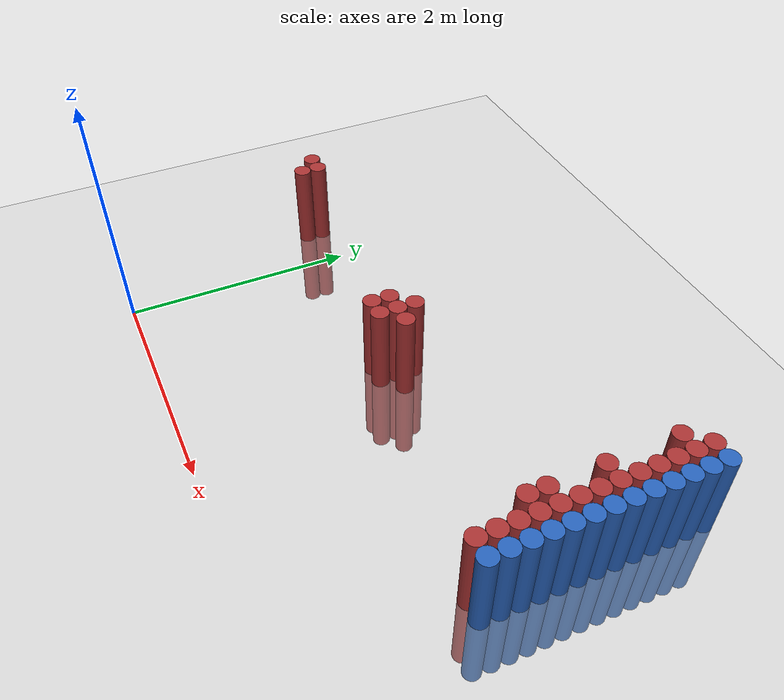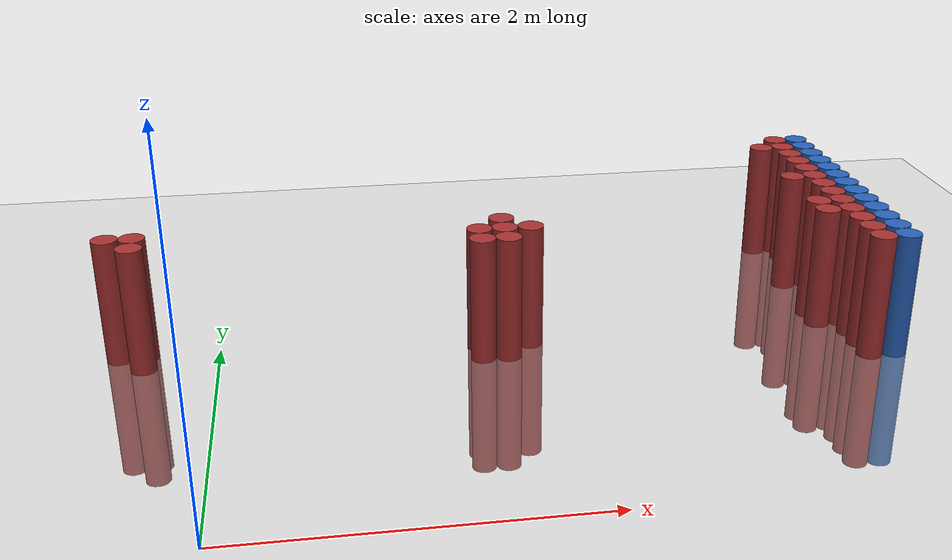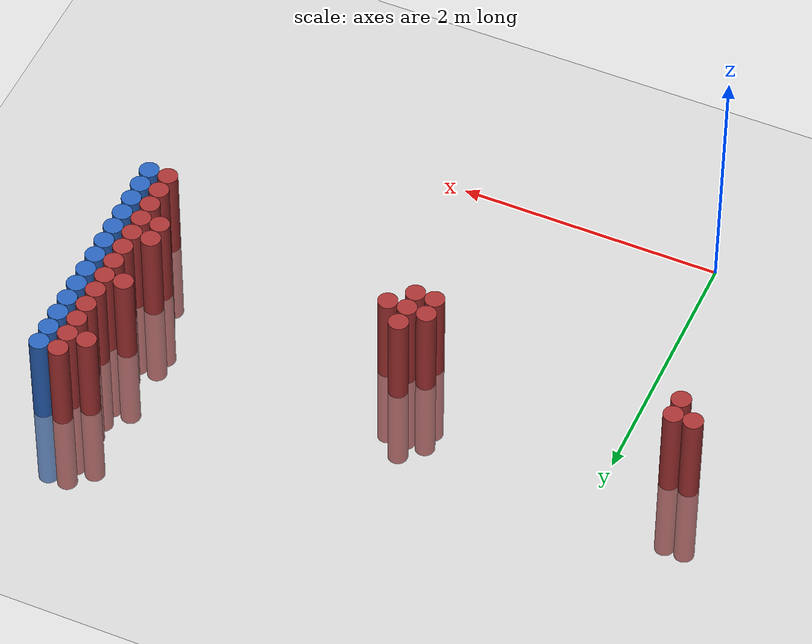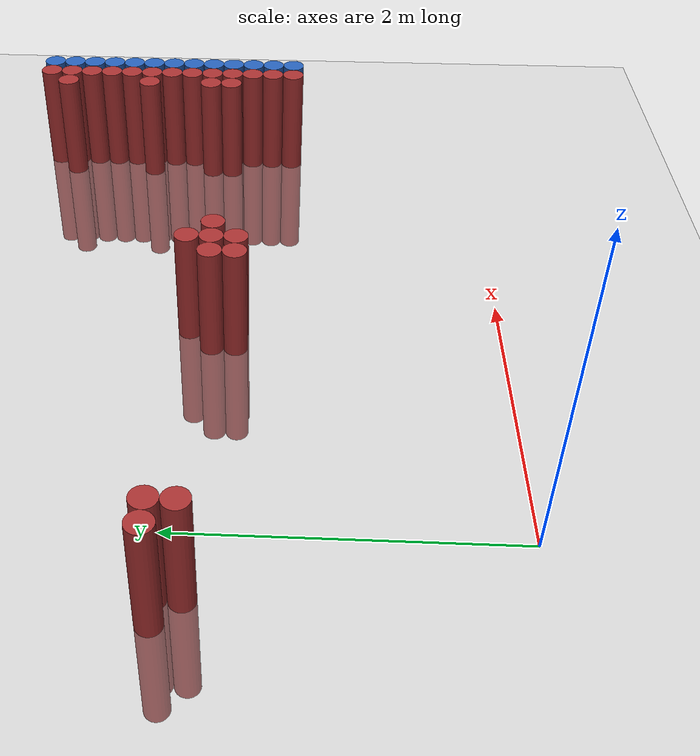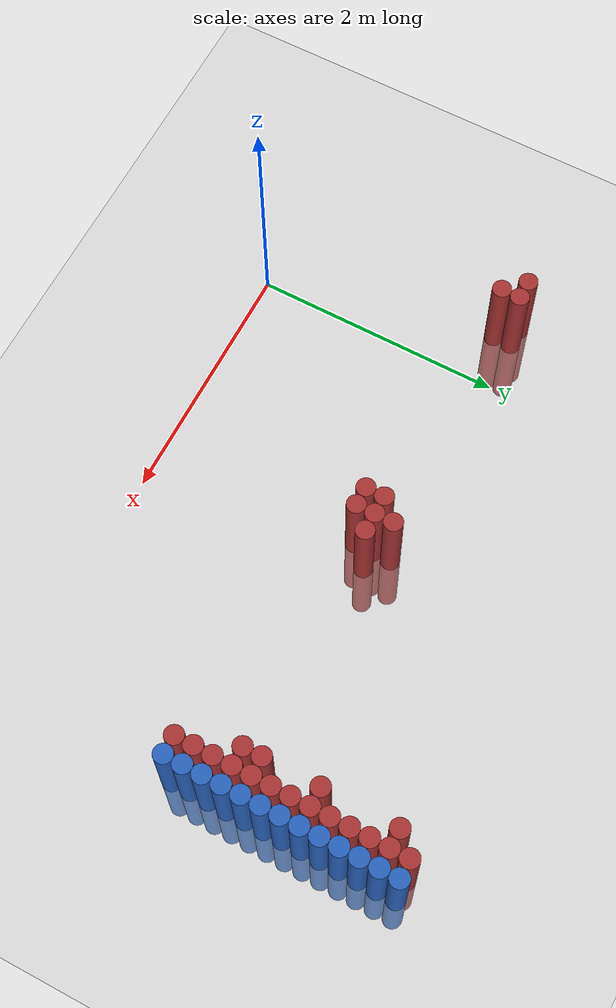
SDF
<sdf version="1.6">
 <world name="default">
  <model name="ground_plane">
   <static>1</static>
   <link name="link">
    <collision name="collision">
     <geometry><plane><normal>0 0 1</normal><size>100 100</size></plane></geometry>
     <surface><friction><ode><mu>100</mu><mu2>50</mu2></ode></friction></surface>
    </collision>
    <visual name="visual">
     <cast_shadows>0</cast_shadows>
     <geometry><plane><normal>0 0 1</normal><size>100 100</size></plane></geometry>
     <material>
      <script><uri>file://media/materials/scripts/gazebo.material</uri><name>Gazebo/Grey</name></script>
     </material>
    </visual>
   </link>
  </model>
  <model name="unit_cylinder_134">
   <static>1</static>
   <pose>3.925000 1.525000 0.000000 0.000000 0.000000 0.000000</pose>
   <link name="link">
    <inertial>
     <mass>1</mass>
     <inertia><ixx>0.145833</ixx><ixy>0</ixy><ixz>0</ixz><iyy>0.145833</iyy><iyz>0</iyz><izz>0.125</izz></inertia>
    </inertial>
    <collision name="collision">
     <geometry><cylinder><radius>0.075000</radius><length>1.5</length></cylinder></geometry>
    </collision>
    <visual name="visual">
     <geometry><cylinder><radius>0.075000</radius><length>1.5</length></cylinder></geometry>
     <material>
      <ambient>0.152000 0.379000 0.720000 1</ambient>
      <diffuse>0.152000 0.379000 0.720000 1</diffuse>
     </material>
     <material>
      <script><name>Gazebo/Grey</name><uri>file://media/materials/scripts/gazebo.material</uri></script>
     </material>
    </visual>
   </link>
  </model>
  <model name="unit_cylinder_136">
   <static>1</static>
   <pose>3.925000 1.675000 0.000000 0.000000 0.000000 0.000000</pose>
   <link name="link">
    <inertial>
     <mass>1</mass>
     <inertia><ixx>0.145833</ixx><ixy>0</ixy><ixz>0</ixz><iyy>0.145833</iyy><iyz>0</iyz><izz>0.125</izz></inertia>
    </inertial>
    <collision name="collision">
     <geometry><cylinder><radius>0.075000</radius><length>1.5</length></cylinder></geometry>
    </collision>
    <visual name="visual">
     <geometry><cylinder><radius>0.075000</radius><length>1.5</length></cylinder></geometry>
     <material>
      <ambient>0.152000 0.379000 0.720000 1</ambient>
      <diffuse>0.152000 0.379000 0.720000 1</diffuse>
     </material>
     <material>
      <script><name>Gazebo/Grey</name><uri>file://media/materials/scripts/gazebo.material</uri></script>
     </material>
    </visual>
   </link>
  </model>
  <model name="unit_cylinder_138">
   <static>1</static>
   <pose>3.925000 1.825000 0.000000 0.000000 0.000000 0.000000</pose>
   <link name="link">
    <inertial>
     <mass>1</mass>
     <inertia><ixx>0.145833</ixx><ixy>0</ixy><ixz>0</ixz><iyy>0.145833</iyy><iyz>0</iyz><izz>0.125</izz></inertia>
    </inertial>
    <collision name="collision">
     <geometry><cylinder><radius>0.075000</radius><length>1.5</length></cylinder></geometry>
    </collision>
    <visual name="visual">
     <geometry><cylinder><radius>0.075000</radius><length>1.5</length></cylinder></geometry>
     <material>
      <ambient>0.152000 0.379000 0.720000 1</ambient>
      <diffuse>0.152000 0.379000 0.720000 1</diffuse>
     </material>
     <material>
      <script><name>Gazebo/Grey</name><uri>file://media/materials/scripts/gazebo.material</uri></script>
     </material>
    </visual>
   </link>
  </model>
  <model name="unit_cylinder_140">
   <static>1</static>
   <pose>3.925000 1.975000 0.000000 0.000000 0.000000 0.000000</pose>
   <link name="link">
    <inertial>
     <mass>1</mass>
     <inertia><ixx>0.145833</ixx><ixy>0</ixy><ixz>0</ixz><iyy>0.145833</iyy><iyz>0</iyz><izz>0.125</izz></inertia>
    </inertial>
    <collision name="collision">
     <geometry><cylinder><radius>0.075000</radius><length>1.5</length></cylinder></geometry>
    </collision>
    <visual name="visual">
     <geometry><cylinder><radius>0.075000</radius><length>1.5</length></cylinder></geometry>
     <material>
      <ambient>0.152000 0.379000 0.720000 1</ambient>
      <diffuse>0.152000 0.379000 0.720000 1</diffuse>
     </material>
     <material>
      <script><name>Gazebo/Grey</name><uri>file://media/materials/scripts/gazebo.material</uri></script>
     </material>
    </visual>
   </link>
  </model>
  <model name="unit_cylinder_142">
   <static>1</static>
   <pose>3.925000 2.125000 0.000000 0.000000 0.000000 0.000000</pose>
   <link name="link">
    <inertial>
     <mass>1</mass>
     <inertia><ixx>0.145833</ixx><ixy>0</ixy><ixz>0</ixz><iyy>0.145833</iyy><iyz>0</iyz><izz>0.125</izz></inertia>
    </inertial>
    <collision name="collision">
     <geometry><cylinder><radius>0.075000</radius><length>1.5</length></cylinder></geometry>
    </collision>
    <visual name="visual">
     <geometry><cylinder><radius>0.075000</radius><length>1.5</length></cylinder></geometry>
     <material>
      <ambient>0.152000 0.379000 0.720000 1</ambient>
      <diffuse>0.152000 0.379000 0.720000 1</diffuse>
     </material>
     <material>
      <script><name>Gazebo/Grey</name><uri>file://media/materials/scripts/gazebo.material</uri></script>
     </material>
    </visual>
   </link>
  </model>
  <model name="unit_cylinder_144">
   <static>1</static>
   <pose>3.925000 2.275000 0.000000 0.000000 0.000000 0.000000</pose>
   <link name="link">
    <inertial>
     <mass>1</mass>
     <inertia><ixx>0.145833</ixx><ixy>0</ixy><ixz>0</ixz><iyy>0.145833</iyy><iyz>0</iyz><izz>0.125</izz></inertia>
    </inertial>
    <collision name="collision">
     <geometry><cylinder><radius>0.075000</radius><length>1.5</length></cylinder></geometry>
    </collision>
    <visual name="visual">
     <geometry><cylinder><radius>0.075000</radius><length>1.5</length></cylinder></geometry>
     <material>
      <ambient>0.152000 0.379000 0.720000 1</ambient>
      <diffuse>0.152000 0.379000 0.720000 1</diffuse>
     </material>
     <material>
      <script><name>Gazebo/Grey</name><uri>file://media/materials/scripts/gazebo.material</uri></script>
     </material>
    </visual>
   </link>
  </model>
  <model name="unit_cylinder_146">
   <static>1</static>
   <pose>3.925000 2.425000 0.000000 0.000000 0.000000 0.000000</pose>
   <link name="link">
    <inertial>
     <mass>1</mass>
     <inertia><ixx>0.145833</ixx><ixy>0</ixy><ixz>0</ixz><iyy>0.145833</iyy><iyz>0</iyz><izz>0.125</izz></inertia>
    </inertial>
    <collision name="collision">
     <geometry><cylinder><radius>0.075000</radius><length>1.5</length></cylinder></geometry>
    </collision>
    <visual name="visual">
     <geometry><cylinder><radius>0.075000</radius><length>1.5</length></cylinder></geometry>
     <material>
      <ambient>0.152000 0.379000 0.720000 1</ambient>
      <diffuse>0.152000 0.379000 0.720000 1</diffuse>
     </material>
     <material>
      <script><name>Gazebo/Grey</name><uri>file://media/materials/scripts/gazebo.material</uri></script>
     </material>
    </visual>
   </link>
  </model>
  <model name="unit_cylinder_148">
   <static>1</static>
   <pose>3.925000 2.575000 0.000000 0.000000 0.000000 0.000000</pose>
   <link name="link">
    <inertial>
     <mass>1</mass>
     <inertia><ixx>0.145833</ixx><ixy>0</ixy><ixz>0</ixz><iyy>0.145833</iyy><iyz>0</iyz><izz>0.125</izz></inertia>
    </inertial>
    <collision name="collision">
     <geometry><cylinder><radius>0.075000</radius><length>1.5</length></cylinder></geometry>
    </collision>
    <visual name="visual">
     <geometry><cylinder><radius>0.075000</radius><length>1.5</length></cylinder></geometry>
     <material>
      <ambient>0.152000 0.379000 0.720000 1</ambient>
      <diffuse>0.152000 0.379000 0.720000 1</diffuse>
     </material>
     <material>
      <script><name>Gazebo/Grey</name><uri>file://media/materials/scripts/gazebo.material</uri></script>
     </material>
    </visual>
   </link>
  </model>
  <model name="unit_cylinder_150">
   <static>1</static>
   <pose>3.925000 2.725000 0.000000 0.000000 0.000000 0.000000</pose>
   <link name="link">
    <inertial>
     <mass>1</mass>
     <inertia><ixx>0.145833</ixx><ixy>0</ixy><ixz>0</ixz><iyy>0.145833</iyy><iyz>0</iyz><izz>0.125</izz></inertia>
    </inertial>
    <collision name="collision">
     <geometry><cylinder><radius>0.075000</radius><length>1.5</length></cylinder></geometry>
    </collision>
    <visual name="visual">
     <geometry><cylinder><radius>0.075000</radius><length>1.5</length></cylinder></geometry>
     <material>
      <ambient>0.152000 0.379000 0.720000 1</ambient>
      <diffuse>0.152000 0.379000 0.720000 1</diffuse>
     </material>
     <material>
      <script><name>Gazebo/Grey</name><uri>file://media/materials/scripts/gazebo.material</uri></script>
     </material>
    </visual>
   </link>
  </model>
  <model name="unit_cylinder_152">
   <static>1</static>
   <pose>3.925000 2.875000 0.000000 0.000000 0.000000 0.000000</pose>
   <link name="link">
    <inertial>
     <mass>1</mass>
     <inertia><ixx>0.145833</ixx><ixy>0</ixy><ixz>0</ixz><iyy>0.145833</iyy><iyz>0</iyz><izz>0.125</izz></inertia>
    </inertial>
    <collision name="collision">
     <geometry><cylinder><radius>0.075000</radius><length>1.5</length></cylinder></geometry>
    </collision>
    <visual name="visual">
     <geometry><cylinder><radius>0.075000</radius><length>1.5</length></cylinder></geometry>
     <material>
      <ambient>0.152000 0.379000 0.720000 1</ambient>
      <diffuse>0.152000 0.379000 0.720000 1</diffuse>
     </material>
     <material>
      <script><name>Gazebo/Grey</name><uri>file://media/materials/scripts/gazebo.material</uri></script>
     </material>
    </visual>
   </link>
  </model>
  <model name="unit_cylinder_154">
   <static>1</static>
   <pose>3.925000 3.025000 0.000000 0.000000 0.000000 0.000000</pose>
   <link name="link">
    <inertial>
     <mass>1</mass>
     <inertia><ixx>0.145833</ixx><ixy>0</ixy><ixz>0</ixz><iyy>0.145833</iyy><iyz>0</iyz><izz>0.125</izz></inertia>
    </inertial>
    <collision name="collision">
     <geometry><cylinder><radius>0.075000</radius><length>1.5</length></cylinder></geometry>
    </collision>
    <visual name="visual">
     <geometry><cylinder><radius>0.075000</radius><length>1.5</length></cylinder></geometry>
     <material>
      <ambient>0.152000 0.379000 0.720000 1</ambient>
      <diffuse>0.152000 0.379000 0.720000 1</diffuse>
     </material>
     <material>
      <script><name>Gazebo/Grey</name><uri>file://media/materials/scripts/gazebo.material</uri></script>
     </material>
    </visual>
   </link>
  </model>
  <model name="unit_cylinder_156">
   <static>1</static>
   <pose>3.925000 3.175000 0.000000 0.000000 0.000000 0.000000</pose>
   <link name="link">
    <inertial>
     <mass>1</mass>
     <inertia><ixx>0.145833</ixx><ixy>0</ixy><ixz>0</ixz><iyy>0.145833</iyy><iyz>0</iyz><izz>0.125</izz></inertia>
    </inertial>
    <collision name="collision">
     <geometry><cylinder><radius>0.075000</radius><length>1.5</length></cylinder></geometry>
    </collision>
    <visual name="visual">
     <geometry><cylinder><radius>0.075000</radius><length>1.5</length></cylinder></geometry>
     <material>
      <ambient>0.152000 0.379000 0.720000 1</ambient>
      <diffuse>0.152000 0.379000 0.720000 1</diffuse>
     </material>
     <material>
      <script><name>Gazebo/Grey</name><uri>file://media/materials/scripts/gazebo.material</uri></script>
     </material>
    </visual>
   </link>
  </model>
  <model name="unit_cylinder_332">
   <static>1</static>
   <pose>-0.575000 1.975000 0.000000 0.000000 0.000000 0.000000</pose>
   <link name="link">
    <inertial>
     <mass>1</mass>
     <inertia><ixx>0.145833</ixx><ixy>0</ixy><ixz>0</ixz><iyy>0.145833</iyy><iyz>0</iyz><izz>0.125</izz></inertia>
    </inertial>
    <collision name="collision">
     <geometry><cylinder><radius>0.075000</radius><length>1.5</length></cylinder></geometry>
    </collision>
    <visual name="visual">
     <geometry><cylinder><radius>0.075000</radius><length>1.5</length></cylinder></geometry>
     <material>
      <ambient>0.648000 0.192000 0.192000 1</ambient>
      <diffuse>0.648000 0.192000 0.192000 1</diffuse>
     </material>
     <material>
      <script><name>Gazebo/Grey</name><uri>file://media/materials/scripts/gazebo.material</uri></script>
     </material>
    </visual>
   </link>
  </model>
  <model name="unit_cylinder_338">
   <static>1</static>
   <pose>-0.425000 1.825000 0.000000 0.000000 0.000000 0.000000</pose>
   <link name="link">
    <inertial>
     <mass>1</mass>
     <inertia><ixx>0.145833</ixx><ixy>0</ixy><ixz>0</ixz><iyy>0.145833</iyy><iyz>0</iyz><izz>0.125</izz></inertia>
    </inertial>
    <collision name="collision">
     <geometry><cylinder><radius>0.075000</radius><length>1.5</length></cylinder></geometry>
    </collision>
    <visual name="visual">
     <geometry><cylinder><radius>0.075000</radius><length>1.5</length></cylinder></geometry>
     <material>
      <ambient>0.648000 0.192000 0.192000 1</ambient>
      <diffuse>0.648000 0.192000 0.192000 1</diffuse>
     </material>
     <material>
      <script><name>Gazebo/Grey</name><uri>file://media/materials/scripts/gazebo.material</uri></script>
     </material>
    </visual>
   </link>
  </model>
  <model name="unit_cylinder_339">
   <static>1</static>
   <pose>-0.425000 1.975000 0.000000 0.000000 0.000000 0.000000</pose>
   <link name="link">
    <inertial>
     <mass>1</mass>
     <inertia><ixx>0.145833</ixx><ixy>0</ixy><ixz>0</ixz><iyy>0.145833</iyy><iyz>0</iyz><izz>0.125</izz></inertia>
    </inertial>
    <collision name="collision">
     <geometry><cylinder><radius>0.075000</radius><length>1.5</length></cylinder></geometry>
    </collision>
    <visual name="visual">
     <geometry><cylinder><radius>0.075000</radius><length>1.5</length></cylinder></geometry>
     <material>
      <ambient>0.648000 0.192000 0.192000 1</ambient>
      <diffuse>0.648000 0.192000 0.192000 1</diffuse>
     </material>
     <material>
      <script><name>Gazebo/Grey</name><uri>file://media/materials/scripts/gazebo.material</uri></script>
     </material>
    </visual>
   </link>
  </model>
  <model name="unit_cylinder_387">
   <static>1</static>
   <pose>1.525000 1.675000 0.000000 0.000000 0.000000 0.000000</pose>
   <link name="link">
    <inertial>
     <mass>1</mass>
     <inertia><ixx>0.145833</ixx><ixy>0</ixy><ixz>0</ixz><iyy>0.145833</iyy><iyz>0</iyz><izz>0.125</izz></inertia>
    </inertial>
    <collision name="collision">
     <geometry><cylinder><radius>0.075000</radius><length>1.5</length></cylinder></geometry>
    </collision>
    <visual name="visual">
     <geometry><cylinder><radius>0.075000</radius><length>1.5</length></cylinder></geometry>
     <material>
      <ambient>0.648000 0.192000 0.192000 1</ambient>
      <diffuse>0.648000 0.192000 0.192000 1</diffuse>
     </material>
     <material>
      <script><name>Gazebo/Grey</name><uri>file://media/materials/scripts/gazebo.material</uri></script>
     </material>
    </visual>
   </link>
  </model>
  <model name="unit_cylinder_388">
   <static>1</static>
   <pose>1.525000 1.825000 0.000000 0.000000 0.000000 0.000000</pose>
   <link name="link">
    <inertial>
     <mass>1</mass>
     <inertia><ixx>0.145833</ixx><ixy>0</ixy><ixz>0</ixz><iyy>0.145833</iyy><iyz>0</iyz><izz>0.125</izz></inertia>
    </inertial>
    <collision name="collision">
     <geometry><cylinder><radius>0.075000</radius><length>1.5</length></cylinder></geometry>
    </collision>
    <visual name="visual">
     <geometry><cylinder><radius>0.075000</radius><length>1.5</length></cylinder></geometry>
     <material>
      <ambient>0.648000 0.192000 0.192000 1</ambient>
      <diffuse>0.648000 0.192000 0.192000 1</diffuse>
     </material>
     <material>
      <script><name>Gazebo/Grey</name><uri>file://media/materials/scripts/gazebo.material</uri></script>
     </material>
    </visual>
   </link>
  </model>
  <model name="unit_cylinder_390">
   <static>1</static>
   <pose>1.675000 1.675000 0.000000 0.000000 0.000000 0.000000</pose>
   <link name="link">
    <inertial>
     <mass>1</mass>
     <inertia><ixx>0.145833</ixx><ixy>0</ixy><ixz>0</ixz><iyy>0.145833</iyy><iyz>0</iyz><izz>0.125</izz></inertia>
    </inertial>
    <collision name="collision">
     <geometry><cylinder><radius>0.075000</radius><length>1.5</length></cylinder></geometry>
    </collision>
    <visual name="visual">
     <geometry><cylinder><radius>0.075000</radius><length>1.5</length></cylinder></geometry>
     <material>
      <ambient>0.648000 0.192000 0.192000 1</ambient>
      <diffuse>0.648000 0.192000 0.192000 1</diffuse>
     </material>
     <material>
      <script><name>Gazebo/Grey</name><uri>file://media/materials/scripts/gazebo.material</uri></script>
     </material>
    </visual>
   </link>
  </model>
  <model name="unit_cylinder_391">
   <static>1</static>
   <pose>1.675000 1.825000 0.000000 0.000000 0.000000 0.000000</pose>
   <link name="link">
    <inertial>
     <mass>1</mass>
     <inertia><ixx>0.145833</ixx><ixy>0</ixy><ixz>0</ixz><iyy>0.145833</iyy><iyz>0</iyz><izz>0.125</izz></inertia>
    </inertial>
    <collision name="collision">
     <geometry><cylinder><radius>0.075000</radius><length>1.5</length></cylinder></geometry>
    </collision>
    <visual name="visual">
     <geometry><cylinder><radius>0.075000</radius><length>1.5</length></cylinder></geometry>
     <material>
      <ambient>0.648000 0.192000 0.192000 1</ambient>
      <diffuse>0.648000 0.192000 0.192000 1</diffuse>
     </material>
     <material>
      <script><name>Gazebo/Grey</name><uri>file://media/materials/scripts/gazebo.material</uri></script>
     </material>
    </visual>
   </link>
  </model>
  <model name="unit_cylinder_392">
   <static>1</static>
   <pose>1.675000 1.975000 0.000000 0.000000 0.000000 0.000000</pose>
   <link name="link">
    <inertial>
     <mass>1</mass>
     <inertia><ixx>0.145833</ixx><ixy>0</ixy><ixz>0</ixz><iyy>0.145833</iyy><iyz>0</iyz><izz>0.125</izz></inertia>
    </inertial>
    <collision name="collision">
     <geometry><cylinder><radius>0.075000</radius><length>1.5</length></cylinder></geometry>
    </collision>
    <visual name="visual">
     <geometry><cylinder><radius>0.075000</radius><length>1.5</length></cylinder></geometry>
     <material>
      <ambient>0.648000 0.192000 0.192000 1</ambient>
      <diffuse>0.648000 0.192000 0.192000 1</diffuse>
     </material>
     <material>
      <script><name>Gazebo/Grey</name><uri>file://media/materials/scripts/gazebo.material</uri></script>
     </material>
    </visual>
   </link>
  </model>
  <model name="unit_cylinder_396">
   <static>1</static>
   <pose>1.825000 1.825000 0.000000 0.000000 0.000000 0.000000</pose>
   <link name="link">
    <inertial>
     <mass>1</mass>
     <inertia><ixx>0.145833</ixx><ixy>0</ixy><ixz>0</ixz><iyy>0.145833</iyy><iyz>0</iyz><izz>0.125</izz></inertia>
    </inertial>
    <collision name="collision">
     <geometry><cylinder><radius>0.075000</radius><length>1.5</length></cylinder></geometry>
    </collision>
    <visual name="visual">
     <geometry><cylinder><radius>0.075000</radius><length>1.5</length></cylinder></geometry>
     <material>
      <ambient>0.648000 0.192000 0.192000 1</ambient>
      <diffuse>0.648000 0.192000 0.192000 1</diffuse>
     </material>
     <material>
      <script><name>Gazebo/Grey</name><uri>file://media/materials/scripts/gazebo.material</uri></script>
     </material>
    </visual>
   </link>
  </model>
  <model name="unit_cylinder_413">
   <static>1</static>
   <pose>3.625000 1.825000 0.000000 0.000000 0.000000 0.000000</pose>
   <link name="link">
    <inertial>
     <mass>1</mass>
     <inertia><ixx>0.145833</ixx><ixy>0</ixy><ixz>0</ixz><iyy>0.145833</iyy><iyz>0</iyz><izz>0.125</izz></inertia>
    </inertial>
    <collision name="collision">
     <geometry><cylinder><radius>0.075000</radius><length>1.5</length></cylinder></geometry>
    </collision>
    <visual name="visual">
     <geometry><cylinder><radius>0.075000</radius><length>1.5</length></cylinder></geometry>
     <material>
      <ambient>0.648000 0.192000 0.192000 1</ambient>
      <diffuse>0.648000 0.192000 0.192000 1</diffuse>
     </material>
     <material>
      <script><name>Gazebo/Grey</name><uri>file://media/materials/scripts/gazebo.material</uri></script>
     </material>
    </visual>
   </link>
  </model>
  <model name="unit_cylinder_414">
   <static>1</static>
   <pose>3.625000 1.975000 0.000000 0.000000 0.000000 0.000000</pose>
   <link name="link">
    <inertial>
     <mass>1</mass>
     <inertia><ixx>0.145833</ixx><ixy>0</ixy><ixz>0</ixz><iyy>0.145833</iyy><iyz>0</iyz><izz>0.125</izz></inertia>
    </inertial>
    <collision name="collision">
     <geometry><cylinder><radius>0.075000</radius><length>1.5</length></cylinder></geometry>
    </collision>
    <visual name="visual">
     <geometry><cylinder><radius>0.075000</radius><length>1.5</length></cylinder></geometry>
     <material>
      <ambient>0.648000 0.192000 0.192000 1</ambient>
      <diffuse>0.648000 0.192000 0.192000 1</diffuse>
     </material>
     <material>
      <script><name>Gazebo/Grey</name><uri>file://media/materials/scripts/gazebo.material</uri></script>
     </material>
    </visual>
   </link>
  </model>
  <model name="unit_cylinder_415">
   <static>1</static>
   <pose>3.625000 2.425000 0.000000 0.000000 0.000000 0.000000</pose>
   <link name="link">
    <inertial>
     <mass>1</mass>
     <inertia><ixx>0.145833</ixx><ixy>0</ixy><ixz>0</ixz><iyy>0.145833</iyy><iyz>0</iyz><izz>0.125</izz></inertia>
    </inertial>
    <collision name="collision">
     <geometry><cylinder><radius>0.075000</radius><length>1.5</length></cylinder></geometry>
    </collision>
    <visual name="visual">
     <geometry><cylinder><radius>0.075000</radius><length>1.5</length></cylinder></geometry>
     <material>
      <ambient>0.648000 0.192000 0.192000 1</ambient>
      <diffuse>0.648000 0.192000 0.192000 1</diffuse>
     </material>
     <material>
      <script><name>Gazebo/Grey</name><uri>file://media/materials/scripts/gazebo.material</uri></script>
     </material>
    </visual>
   </link>
  </model>
  <model name="unit_cylinder_416">
   <static>1</static>
   <pose>3.625000 3.025000 0.000000 0.000000 0.000000 0.000000</pose>
   <link name="link">
    <inertial>
     <mass>1</mass>
     <inertia><ixx>0.145833</ixx><ixy>0</ixy><ixz>0</ixz><iyy>0.145833</iyy><iyz>0</iyz><izz>0.125</izz></inertia>
    </inertial>
    <collision name="collision">
     <geometry><cylinder><radius>0.075000</radius><length>1.5</length></cylinder></geometry>
    </collision>
    <visual name="visual">
     <geometry><cylinder><radius>0.075000</radius><length>1.5</length></cylinder></geometry>
     <material>
      <ambient>0.648000 0.192000 0.192000 1</ambient>
      <diffuse>0.648000 0.192000 0.192000 1</diffuse>
     </material>
     <material>
      <script><name>Gazebo/Grey</name><uri>file://media/materials/scripts/gazebo.material</uri></script>
     </material>
    </visual>
   </link>
  </model>
  <model name="unit_cylinder_428">
   <static>1</static>
   <pose>3.775000 1.375000 0.000000 0.000000 0.000000 0.000000</pose>
   <link name="link">
    <inertial>
     <mass>1</mass>
     <inertia><ixx>0.145833</ixx><ixy>0</ixy><ixz>0</ixz><iyy>0.145833</iyy><iyz>0</iyz><izz>0.125</izz></inertia>
    </inertial>
    <collision name="collision">
     <geometry><cylinder><radius>0.075000</radius><length>1.5</length></cylinder></geometry>
    </collision>
    <visual name="visual">
     <geometry><cylinder><radius>0.075000</radius><length>1.5</length></cylinder></geometry>
     <material>
      <ambient>0.648000 0.192000 0.192000 1</ambient>
      <diffuse>0.648000 0.192000 0.192000 1</diffuse>
     </material>
     <material>
      <script><name>Gazebo/Grey</name><uri>file://media/materials/scripts/gazebo.material</uri></script>
     </material>
    </visual>
   </link>
  </model>
  <model name="unit_cylinder_429">
   <static>1</static>
   <pose>3.775000 1.525000 0.000000 0.000000 0.000000 0.000000</pose>
   <link name="link">
    <inertial>
     <mass>1</mass>
     <inertia><ixx>0.145833</ixx><ixy>0</ixy><ixz>0</ixz><iyy>0.145833</iyy><iyz>0</iyz><izz>0.125</izz></inertia>
    </inertial>
    <collision name="collision">
     <geometry><cylinder><radius>0.075000</radius><length>1.5</length></cylinder></geometry>
    </collision>
    <visual name="visual">
     <geometry><cylinder><radius>0.075000</radius><length>1.5</length></cylinder></geometry>
     <material>
      <ambient>0.648000 0.192000 0.192000 1</ambient>
      <diffuse>0.648000 0.192000 0.192000 1</diffuse>
     </material>
     <material>
      <script><name>Gazebo/Grey</name><uri>file://media/materials/scripts/gazebo.material</uri></script>
     </material>
    </visual>
   </link>
  </model>
  <model name="unit_cylinder_430">
   <static>1</static>
   <pose>3.775000 1.675000 0.000000 0.000000 0.000000 0.000000</pose>
   <link name="link">
    <inertial>
     <mass>1</mass>
     <inertia><ixx>0.145833</ixx><ixy>0</ixy><ixz>0</ixz><iyy>0.145833</iyy><iyz>0</iyz><izz>0.125</izz></inertia>
    </inertial>
    <collision name="collision">
     <geometry><cylinder><radius>0.075000</radius><length>1.5</length></cylinder></geometry>
    </collision>
    <visual name="visual">
     <geometry><cylinder><radius>0.075000</radius><length>1.5</length></cylinder></geometry>
     <material>
      <ambient>0.648000 0.192000 0.192000 1</ambient>
      <diffuse>0.648000 0.192000 0.192000 1</diffuse>
     </material>
     <material>
      <script><name>Gazebo/Grey</name><uri>file://media/materials/scripts/gazebo.material</uri></script>
     </material>
    </visual>
   </link>
  </model>
  <model name="unit_cylinder_431">
   <static>1</static>
   <pose>3.775000 1.825000 0.000000 0.000000 0.000000 0.000000</pose>
   <link name="link">
    <inertial>
     <mass>1</mass>
     <inertia><ixx>0.145833</ixx><ixy>0</ixy><ixz>0</ixz><iyy>0.145833</iyy><iyz>0</iyz><izz>0.125</izz></inertia>
    </inertial>
    <collision name="collision">
     <geometry><cylinder><radius>0.075000</radius><length>1.5</length></cylinder></geometry>
    </collision>
    <visual name="visual">
     <geometry><cylinder><radius>0.075000</radius><length>1.5</length></cylinder></geometry>
     <material>
      <ambient>0.648000 0.192000 0.192000 1</ambient>
      <diffuse>0.648000 0.192000 0.192000 1</diffuse>
     </material>
     <material>
      <script><name>Gazebo/Grey</name><uri>file://media/materials/scripts/gazebo.material</uri></script>
     </material>
    </visual>
   </link>
  </model>
  <model name="unit_cylinder_432">
   <static>1</static>
   <pose>3.775000 1.975000 0.000000 0.000000 0.000000 0.000000</pose>
   <link name="link">
    <inertial>
     <mass>1</mass>
     <inertia><ixx>0.145833</ixx><ixy>0</ixy><ixz>0</ixz><iyy>0.145833</iyy><iyz>0</iyz><izz>0.125</izz></inertia>
    </inertial>
    <collision name="collision">
     <geometry><cylinder><radius>0.075000</radius><length>1.5</length></cylinder></geometry>
    </collision>
    <visual name="visual">
     <geometry><cylinder><radius>0.075000</radius><length>1.5</length></cylinder></geometry>
     <material>
      <ambient>0.648000 0.192000 0.192000 1</ambient>
      <diffuse>0.648000 0.192000 0.192000 1</diffuse>
     </material>
     <material>
      <script><name>Gazebo/Grey</name><uri>file://media/materials/scripts/gazebo.material</uri></script>
     </material>
    </visual>
   </link>
  </model>
  <model name="unit_cylinder_433">
   <static>1</static>
   <pose>3.775000 2.125000 0.000000 0.000000 0.000000 0.000000</pose>
   <link name="link">
    <inertial>
     <mass>1</mass>
     <inertia><ixx>0.145833</ixx><ixy>0</ixy><ixz>0</ixz><iyy>0.145833</iyy><iyz>0</iyz><izz>0.125</izz></inertia>
    </inertial>
    <collision name="collision">
     <geometry><cylinder><radius>0.075000</radius><length>1.5</length></cylinder></geometry>
    </collision>
    <visual name="visual">
     <geometry><cylinder><radius>0.075000</radius><length>1.5</length></cylinder></geometry>
     <material>
      <ambient>0.648000 0.192000 0.192000 1</ambient>
      <diffuse>0.648000 0.192000 0.192000 1</diffuse>
     </material>
     <material>
      <script><name>Gazebo/Grey</name><uri>file://media/materials/scripts/gazebo.material</uri></script>
     </material>
    </visual>
   </link>
  </model>
  <model name="unit_cylinder_434">
   <static>1</static>
   <pose>3.775000 2.275000 0.000000 0.000000 0.000000 0.000000</pose>
   <link name="link">
    <inertial>
     <mass>1</mass>
     <inertia><ixx>0.145833</ixx><ixy>0</ixy><ixz>0</ixz><iyy>0.145833</iyy><iyz>0</iyz><izz>0.125</izz></inertia>
    </inertial>
    <collision name="collision">
     <geometry><cylinder><radius>0.075000</radius><length>1.5</length></cylinder></geometry>
    </collision>
    <visual name="visual">
     <geometry><cylinder><radius>0.075000</radius><length>1.5</length></cylinder></geometry>
     <material>
      <ambient>0.648000 0.192000 0.192000 1</ambient>
      <diffuse>0.648000 0.192000 0.192000 1</diffuse>
     </material>
     <material>
      <script><name>Gazebo/Grey</name><uri>file://media/materials/scripts/gazebo.material</uri></script>
     </material>
    </visual>
   </link>
  </model>
  <model name="unit_cylinder_435">
   <static>1</static>
   <pose>3.775000 2.425000 0.000000 0.000000 0.000000 0.000000</pose>
   <link name="link">
    <inertial>
     <mass>1</mass>
     <inertia><ixx>0.145833</ixx><ixy>0</ixy><ixz>0</ixz><iyy>0.145833</iyy><iyz>0</iyz><izz>0.125</izz></inertia>
    </inertial>
    <collision name="collision">
     <geometry><cylinder><radius>0.075000</radius><length>1.5</length></cylinder></geometry>
    </collision>
    <visual name="visual">
     <geometry><cylinder><radius>0.075000</radius><length>1.5</length></cylinder></geometry>
     <material>
      <ambient>0.648000 0.192000 0.192000 1</ambient>
      <diffuse>0.648000 0.192000 0.192000 1</diffuse>
     </material>
     <material>
      <script><name>Gazebo/Grey</name><uri>file://media/materials/scripts/gazebo.material</uri></script>
     </material>
    </visual>
   </link>
  </model>
  <model name="unit_cylinder_436">
   <static>1</static>
   <pose>3.775000 2.575000 0.000000 0.000000 0.000000 0.000000</pose>
   <link name="link">
    <inertial>
     <mass>1</mass>
     <inertia><ixx>0.145833</ixx><ixy>0</ixy><ixz>0</ixz><iyy>0.145833</iyy><iyz>0</iyz><izz>0.125</izz></inertia>
    </inertial>
    <collision name="collision">
     <geometry><cylinder><radius>0.075000</radius><length>1.5</length></cylinder></geometry>
    </collision>
    <visual name="visual">
     <geometry><cylinder><radius>0.075000</radius><length>1.5</length></cylinder></geometry>
     <material>
      <ambient>0.648000 0.192000 0.192000 1</ambient>
      <diffuse>0.648000 0.192000 0.192000 1</diffuse>
     </material>
     <material>
      <script><name>Gazebo/Grey</name><uri>file://media/materials/scripts/gazebo.material</uri></script>
     </material>
    </visual>
   </link>
  </model>
  <model name="unit_cylinder_437">
   <static>1</static>
   <pose>3.775000 2.725000 0.000000 0.000000 0.000000 0.000000</pose>
   <link name="link">
    <inertial>
     <mass>1</mass>
     <inertia><ixx>0.145833</ixx><ixy>0</ixy><ixz>0</ixz><iyy>0.145833</iyy><iyz>0</iyz><izz>0.125</izz></inertia>
    </inertial>
    <collision name="collision">
     <geometry><cylinder><radius>0.075000</radius><length>1.5</length></cylinder></geometry>
    </collision>
    <visual name="visual">
     <geometry><cylinder><radius>0.075000</radius><length>1.5</length></cylinder></geometry>
     <material>
      <ambient>0.648000 0.192000 0.192000 1</ambient>
      <diffuse>0.648000 0.192000 0.192000 1</diffuse>
     </material>
     <material>
      <script><name>Gazebo/Grey</name><uri>file://media/materials/scripts/gazebo.material</uri></script>
     </material>
    </visual>
   </link>
  </model>
  <model name="unit_cylinder_438">
   <static>1</static>
   <pose>3.775000 2.875000 0.000000 0.000000 0.000000 0.000000</pose>
   <link name="link">
    <inertial>
     <mass>1</mass>
     <inertia><ixx>0.145833</ixx><ixy>0</ixy><ixz>0</ixz><iyy>0.145833</iyy><iyz>0</iyz><izz>0.125</izz></inertia>
    </inertial>
    <collision name="collision">
     <geometry><cylinder><radius>0.075000</radius><length>1.5</length></cylinder></geometry>
    </collision>
    <visual name="visual">
     <geometry><cylinder><radius>0.075000</radius><length>1.5</length></cylinder></geometry>
     <material>
      <ambient>0.648000 0.192000 0.192000 1</ambient>
      <diffuse>0.648000 0.192000 0.192000 1</diffuse>
     </material>
     <material>
      <script><name>Gazebo/Grey</name><uri>file://media/materials/scripts/gazebo.material</uri></script>
     </material>
    </visual>
   </link>
  </model>
  <model name="unit_cylinder_439">
   <static>1</static>
   <pose>3.775000 3.025000 0.000000 0.000000 0.000000 0.000000</pose>
   <link name="link">
    <inertial>
     <mass>1</mass>
     <inertia><ixx>0.145833</ixx><ixy>0</ixy><ixz>0</ixz><iyy>0.145833</iyy><iyz>0</iyz><izz>0.125</izz></inertia>
    </inertial>
    <collision name="collision">
     <geometry><cylinder><radius>0.075000</radius><length>1.5</length></cylinder></geometry>
    </collision>
    <visual name="visual">
     <geometry><cylinder><radius>0.075000</radius><length>1.5</length></cylinder></geometry>
     <material>
      <ambient>0.648000 0.192000 0.192000 1</ambient>
      <diffuse>0.648000 0.192000 0.192000 1</diffuse>
     </material>
     <material>
      <script><name>Gazebo/Grey</name><uri>file://media/materials/scripts/gazebo.material</uri></script>
     </material>
    </visual>
   </link>
  </model>
  <model name="unit_cylinder_440">
   <static>1</static>
   <pose>3.775000 3.175000 0.000000 0.000000 0.000000 0.000000</pose>
   <link name="link">
    <inertial>
     <mass>1</mass>
     <inertia><ixx>0.145833</ixx><ixy>0</ixy><ixz>0</ixz><iyy>0.145833</iyy><iyz>0</iyz><izz>0.125</izz></inertia>
    </inertial>
    <collision name="collision">
     <geometry><cylinder><radius>0.075000</radius><length>1.5</length></cylinder></geometry>
    </collision>
    <visual name="visual">
     <geometry><cylinder><radius>0.075000</radius><length>1.5</length></cylinder></geometry>
     <material>
      <ambient>0.648000 0.192000 0.192000 1</ambient>
      <diffuse>0.648000 0.192000 0.192000 1</diffuse>
     </material>
     <material>
      <script><name>Gazebo/Grey</name><uri>file://media/materials/scripts/gazebo.material</uri></script>
     </material>
    </visual>
   </link>
  </model>
  <model name="unit_cylinder_473">
   <static>1</static>
   <pose>3.925000 1.375000 0.000000 0.000000 0.000000 0.000000</pose>
   <link name="link">
    <inertial>
     <mass>1</mass>
     <inertia><ixx>0.145833</ixx><ixy>0</ixy><ixz>0</ixz><iyy>0.145833</iyy><iyz>0</iyz><izz>0.125</izz></inertia>
    </inertial>
    <collision name="collision">
     <geometry><cylinder><radius>0.075000</radius><length>1.5</length></cylinder></geometry>
    </collision>
    <visual name="visual">
     <geometry><cylinder><radius>0.075000</radius><length>1.5</length></cylinder></geometry>
     <material>
      <ambient>0.152000 0.379000 0.720000 1</ambient>
      <diffuse>0.152000 0.379000 0.720000 1</diffuse>
     </material>
     <material>
      <script><name>Gazebo/Grey</name><uri>file://media/materials/scripts/gazebo.material</uri></script>
     </material>
    </visual>
   </link>
  </model>
  <model name="unit_cylinder_474">
   <static>1</static>
   <pose>3.925000 1.525000 0.000000 0.000000 0.000000 0.000000</pose>
   <link name="link">
    <inertial>
     <mass>1</mass>
     <inertia><ixx>0.145833</ixx><ixy>0</ixy><ixz>0</ixz><iyy>0.145833</iyy><iyz>0</iyz><izz>0.125</izz></inertia>
    </inertial>
    <collision name="collision">
     <geometry><cylinder><radius>0.075000</radius><length>1.5</length></cylinder></geometry>
    </collision>
    <visual name="visual">
     <geometry><cylinder><radius>0.075000</radius><length>1.5</length></cylinder></geometry>
     <material>
      <ambient>0.152000 0.379000 0.720000 1</ambient>
      <diffuse>0.152000 0.379000 0.720000 1</diffuse>
     </material>
     <material>
      <script><name>Gazebo/Grey</name><uri>file://media/materials/scripts/gazebo.material</uri></script>
     </material>
    </visual>
   </link>
  </model>
  <model name="unit_cylinder_475">
   <static>1</static>
   <pose>3.925000 1.675000 0.000000 0.000000 0.000000 0.000000</pose>
   <link name="link">
    <inertial>
     <mass>1</mass>
     <inertia><ixx>0.145833</ixx><ixy>0</ixy><ixz>0</ixz><iyy>0.145833</iyy><iyz>0</iyz><izz>0.125</izz></inertia>
    </inertial>
    <collision name="collision">
     <geometry><cylinder><radius>0.075000</radius><length>1.5</length></cylinder></geometry>
    </collision>
    <visual name="visual">
     <geometry><cylinder><radius>0.075000</radius><length>1.5</length></cylinder></geometry>
     <material>
      <ambient>0.152000 0.379000 0.720000 1</ambient>
      <diffuse>0.152000 0.379000 0.720000 1</diffuse>
     </material>
     <material>
      <script><name>Gazebo/Grey</name><uri>file://media/materials/scripts/gazebo.material</uri></script>
     </material>
    </visual>
   </link>
  </model>
  <model name="unit_cylinder_476">
   <static>1</static>
   <pose>3.925000 1.825000 0.000000 0.000000 0.000000 0.000000</pose>
   <link name="link">
    <inertial>
     <mass>1</mass>
     <inertia><ixx>0.145833</ixx><ixy>0</ixy><ixz>0</ixz><iyy>0.145833</iyy><iyz>0</iyz><izz>0.125</izz></inertia>
    </inertial>
    <collision name="collision">
     <geometry><cylinder><radius>0.075000</radius><length>1.5</length></cylinder></geometry>
    </collision>
    <visual name="visual">
     <geometry><cylinder><radius>0.075000</radius><length>1.5</length></cylinder></geometry>
     <material>
      <ambient>0.152000 0.379000 0.720000 1</ambient>
      <diffuse>0.152000 0.379000 0.720000 1</diffuse>
     </material>
     <material>
      <script><name>Gazebo/Grey</name><uri>file://media/materials/scripts/gazebo.material</uri></script>
     </material>
    </visual>
   </link>
  </model>
  <model name="unit_cylinder_477">
   <static>1</static>
   <pose>3.925000 1.975000 0.000000 0.000000 0.000000 0.000000</pose>
   <link name="link">
    <inertial>
     <mass>1</mass>
     <inertia><ixx>0.145833</ixx><ixy>0</ixy><ixz>0</ixz><iyy>0.145833</iyy><iyz>0</iyz><izz>0.125</izz></inertia>
    </inertial>
    <collision name="collision">
     <geometry><cylinder><radius>0.075000</radius><length>1.5</length></cylinder></geometry>
    </collision>
    <visual name="visual">
     <geometry><cylinder><radius>0.075000</radius><length>1.5</length></cylinder></geometry>
     <material>
      <ambient>0.152000 0.379000 0.720000 1</ambient>
      <diffuse>0.152000 0.379000 0.720000 1</diffuse>
     </material>
     <material>
      <script><name>Gazebo/Grey</name><uri>file://media/materials/scripts/gazebo.material</uri></script>
     </material>
    </visual>
   </link>
  </model>
  <model name="unit_cylinder_478">
   <static>1</static>
   <pose>3.925000 2.125000 0.000000 0.000000 0.000000 0.000000</pose>
   <link name="link">
    <inertial>
     <mass>1</mass>
     <inertia><ixx>0.145833</ixx><ixy>0</ixy><ixz>0</ixz><iyy>0.145833</iyy><iyz>0</iyz><izz>0.125</izz></inertia>
    </inertial>
    <collision name="collision">
     <geometry><cylinder><radius>0.075000</radius><length>1.5</length></cylinder></geometry>
    </collision>
    <visual name="visual">
     <geometry><cylinder><radius>0.075000</radius><length>1.5</length></cylinder></geometry>
     <material>
      <ambient>0.152000 0.379000 0.720000 1</ambient>
      <diffuse>0.152000 0.379000 0.720000 1</diffuse>
     </material>
     <material>
      <script><name>Gazebo/Grey</name><uri>file://media/materials/scripts/gazebo.material</uri></script>
     </material>
    </visual>
   </link>
  </model>
  <model name="unit_cylinder_479">
   <static>1</static>
   <pose>3.925000 2.275000 0.000000 0.000000 0.000000 0.000000</pose>
   <link name="link">
    <inertial>
     <mass>1</mass>
     <inertia><ixx>0.145833</ixx><ixy>0</ixy><ixz>0</ixz><iyy>0.145833</iyy><iyz>0</iyz><izz>0.125</izz></inertia>
    </inertial>
    <collision name="collision">
     <geometry><cylinder><radius>0.075000</radius><length>1.5</length></cylinder></geometry>
    </collision>
    <visual name="visual">
     <geometry><cylinder><radius>0.075000</radius><length>1.5</length></cylinder></geometry>
     <material>
      <ambient>0.152000 0.379000 0.720000 1</ambient>
      <diffuse>0.152000 0.379000 0.720000 1</diffuse>
     </material>
     <material>
      <script><name>Gazebo/Grey</name><uri>file://media/materials/scripts/gazebo.material</uri></script>
     </material>
    </visual>
   </link>
  </model>
  <model name="unit_cylinder_480">
   <static>1</static>
   <pose>3.925000 2.425000 0.000000 0.000000 0.000000 0.000000</pose>
   <link name="link">
    <inertial>
     <mass>1</mass>
     <inertia><ixx>0.145833</ixx><ixy>0</ixy><ixz>0</ixz><iyy>0.145833</iyy><iyz>0</iyz><izz>0.125</izz></inertia>
    </inertial>
    <collision name="collision">
     <geometry><cylinder><radius>0.075000</radius><length>1.5</length></cylinder></geometry>
    </collision>
    <visual name="visual">
     <geometry><cylinder><radius>0.075000</radius><length>1.5</length></cylinder></geometry>
     <material>
      <ambient>0.152000 0.379000 0.720000 1</ambient>
      <diffuse>0.152000 0.379000 0.720000 1</diffuse>
     </material>
     <material>
      <script><name>Gazebo/Grey</name><uri>file://media/materials/scripts/gazebo.material</uri></script>
     </material>
    </visual>
   </link>
  </model>
  <model name="unit_cylinder_481">
   <static>1</static>
   <pose>3.925000 2.575000 0.000000 0.000000 0.000000 0.000000</pose>
   <link name="link">
    <inertial>
     <mass>1</mass>
     <inertia><ixx>0.145833</ixx><ixy>0</ixy><ixz>0</ixz><iyy>0.145833</iyy><iyz>0</iyz><izz>0.125</izz></inertia>
    </inertial>
    <collision name="collision">
     <geometry><cylinder><radius>0.075000</radius><length>1.5</length></cylinder></geometry>
    </collision>
    <visual name="visual">
     <geometry><cylinder><radius>0.075000</radius><length>1.5</length></cylinder></geometry>
     <material>
      <ambient>0.152000 0.379000 0.720000 1</ambient>
      <diffuse>0.152000 0.379000 0.720000 1</diffuse>
     </material>
     <material>
      <script><name>Gazebo/Grey</name><uri>file://media/materials/scripts/gazebo.material</uri></script>
     </material>
    </visual>
   </link>
  </model>
  <model name="unit_cylinder_482">
   <static>1</static>
   <pose>3.925000 2.725000 0.000000 0.000000 0.000000 0.000000</pose>
   <link name="link">
    <inertial>
     <mass>1</mass>
     <inertia><ixx>0.145833</ixx><ixy>0</ixy><ixz>0</ixz><iyy>0.145833</iyy><iyz>0</iyz><izz>0.125</izz></inertia>
    </inertial>
    <collision name="collision">
     <geometry><cylinder><radius>0.075000</radius><length>1.5</length></cylinder></geometry>
    </collision>
    <visual name="visual">
     <geometry><cylinder><radius>0.075000</radius><length>1.5</length></cylinder></geometry>
     <material>
      <ambient>0.152000 0.379000 0.720000 1</ambient>
      <diffuse>0.152000 0.379000 0.720000 1</diffuse>
     </material>
     <material>
      <script><name>Gazebo/Grey</name><uri>file://media/materials/scripts/gazebo.material</uri></script>
     </material>
    </visual>
   </link>
  </model>
  <model name="unit_cylinder_483">
   <static>1</static>
   <pose>3.925000 2.875000 0.000000 0.000000 0.000000 0.000000</pose>
   <link name="link">
    <inertial>
     <mass>1</mass>
     <inertia><ixx>0.145833</ixx><ixy>0</ixy><ixz>0</ixz><iyy>0.145833</iyy><iyz>0</iyz><izz>0.125</izz></inertia>
    </inertial>
    <collision name="collision">
     <geometry><cylinder><radius>0.075000</radius><length>1.5</length></cylinder></geometry>
    </collision>
    <visual name="visual">
     <geometry><cylinder><radius>0.075000</radius><length>1.5</length></cylinder></geometry>
     <material>
      <ambient>0.152000 0.379000 0.720000 1</ambient>
      <diffuse>0.152000 0.379000 0.720000 1</diffuse>
     </material>
     <material>
      <script><name>Gazebo/Grey</name><uri>file://media/materials/scripts/gazebo.material</uri></script>
     </material>
    </visual>
   </link>
  </model>
  <model name="unit_cylinder_484">
   <static>1</static>
   <pose>3.925000 3.025000 0.000000 0.000000 0.000000 0.000000</pose>
   <link name="link">
    <inertial>
     <mass>1</mass>
     <inertia><ixx>0.145833</ixx><ixy>0</ixy><ixz>0</ixz><iyy>0.145833</iyy><iyz>0</iyz><izz>0.125</izz></inertia>
    </inertial>
    <collision name="collision">
     <geometry><cylinder><radius>0.075000</radius><length>1.5</length></cylinder></geometry>
    </collision>
    <visual name="visual">
     <geometry><cylinder><radius>0.075000</radius><length>1.5</length></cylinder></geometry>
     <material>
      <ambient>0.152000 0.379000 0.720000 1</ambient>
      <diffuse>0.152000 0.379000 0.720000 1</diffuse>
     </material>
     <material>
      <script><name>Gazebo/Grey</name><uri>file://media/materials/scripts/gazebo.material</uri></script>
     </material>
    </visual>
   </link>
  </model>
 </world>
</sdf>
